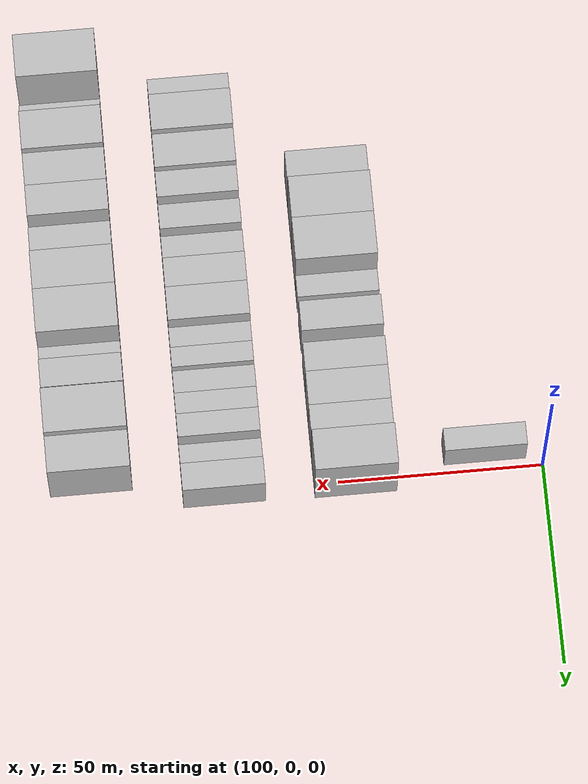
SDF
<sdf version="1.6">
 <world name="default">
  <model name="building_320">
   <static>1</static>
   <pose>114.0000 -5.0023 0 0.000000 0.000000 0.000000</pose>
   <link name="link">
    <pose>0 0 6.00 0 0 0</pose>
    <collision name="collision"><geometry><box><size>20.0000 5.6497 12.0000</size></box></geometry></collision>
    <visual name="visual">
     <cast_shadows>0</cast_shadows>
     <geometry><box><size>20.0000 5.6497 12.0000</size></box></geometry>
     <material>
      <script>
       <uri>model://HANNAS_wall/materials/scripts</uri>
       <uri>model://HANNAS_wall/materials/textures</uri>
       <name>vrc/HANNAS_wall</name>
      </script>
     </material>
    </visual>
   </link>
  </model>
  <model name="building_430">
   <static>1</static>
   <pose>146.0000 -75.6125 0 0.000000 0.000000 0.000000</pose>
   <link name="link">
    <pose>0 0 9.00 0 0 0</pose>
    <collision name="collision"><geometry><box><size>20.0000 8.7544 18.0000</size></box></geometry></collision>
    <visual name="visual">
     <cast_shadows>0</cast_shadows>
     <geometry><box><size>20.0000 8.7544 18.0000</size></box></geometry>
     <material>
      <script>
       <uri>model://HANNAS_wall/materials/scripts</uri>
       <uri>model://HANNAS_wall/materials/textures</uri>
       <name>vrc/HANNAS_wall</name>
      </script>
     </material>
    </visual>
   </link>
  </model>
  <model name="building_431">
   <static>1</static>
   <pose>146.0000 -65.9645 0 0.000000 0.000000 0.000000</pose>
   <link name="link">
    <pose>0 0 12.00 0 0 0</pose>
    <collision name="collision"><geometry><box><size>20.0000 10.5416 24.0000</size></box></geometry></collision>
    <visual name="visual">
     <cast_shadows>0</cast_shadows>
     <geometry><box><size>20.0000 10.5416 24.0000</size></box></geometry>
     <material>
      <script>
       <uri>model://HANNAS_wall/materials/scripts</uri>
       <uri>model://HANNAS_wall/materials/textures</uri>
       <name>vrc/HANNAS_wall</name>
      </script>
     </material>
    </visual>
   </link>
  </model>
  <model name="building_432">
   <static>1</static>
   <pose>146.0000 -55.2646 0 0.000000 0.000000 0.000000</pose>
   <link name="link">
    <pose>0 0 12.00 0 0 0</pose>
    <collision name="collision"><geometry><box><size>20.0000 10.8582 24.0000</size></box></geometry></collision>
    <visual name="visual">
     <cast_shadows>0</cast_shadows>
     <geometry><box><size>20.0000 10.8582 24.0000</size></box></geometry>
     <material>
      <script>
       <uri>model://HANNAS_wall/materials/scripts</uri>
       <uri>model://HANNAS_wall/materials/textures</uri>
       <name>vrc/HANNAS_wall</name>
      </script>
     </material>
    </visual>
   </link>
  </model>
  <model name="building_433">
   <static>1</static>
   <pose>146.0000 -47.0521 0 0.000000 0.000000 0.000000</pose>
   <link name="link">
    <pose>0 0 6.00 0 0 0</pose>
    <collision name="collision"><geometry><box><size>20.0000 5.5669 12.0000</size></box></geometry></collision>
    <visual name="visual">
     <cast_shadows>0</cast_shadows>
     <geometry><box><size>20.0000 5.5669 12.0000</size></box></geometry>
     <material>
      <script>
       <uri>model://HANNAS_wall/materials/scripts</uri>
       <uri>model://HANNAS_wall/materials/textures</uri>
       <name>vrc/HANNAS_wall</name>
      </script>
     </material>
    </visual>
   </link>
  </model>
  <model name="building_434">
   <static>1</static>
   <pose>146.0000 -37.4727 0 0.000000 0.000000 0.000000</pose>
   <link name="link">
    <pose>0 0 9.00 0 0 0</pose>
    <collision name="collision"><geometry><box><size>20.0000 7.5919 18.0000</size></box></geometry></collision>
    <visual name="visual">
     <cast_shadows>0</cast_shadows>
     <geometry><box><size>20.0000 7.5919 18.0000</size></box></geometry>
     <material>
      <script>
       <uri>model://HANNAS_wall/materials/scripts</uri>
       <uri>model://HANNAS_wall/materials/textures</uri>
       <name>vrc/HANNAS_wall</name>
      </script>
     </material>
    </visual>
   </link>
  </model>
  <model name="building_435">
   <static>1</static>
   <pose>146.0000 -27.0277 0 0.000000 0.000000 0.000000</pose>
   <link name="link">
    <pose>0 0 9.00 0 0 0</pose>
    <collision name="collision"><geometry><box><size>20.0000 7.2983 18.0000</size></box></geometry></collision>
    <visual name="visual">
     <cast_shadows>0</cast_shadows>
     <geometry><box><size>20.0000 7.2983 18.0000</size></box></geometry>
     <material>
      <script>
       <uri>model://HANNAS_wall/materials/scripts</uri>
       <uri>model://HANNAS_wall/materials/textures</uri>
       <name>vrc/HANNAS_wall</name>
      </script>
     </material>
    </visual>
   </link>
  </model>
  <model name="building_436">
   <static>1</static>
   <pose>146.0000 -19.1147 0 0.000000 0.000000 0.000000</pose>
   <link name="link">
    <pose>0 0 9.00 0 0 0</pose>
    <collision name="collision"><geometry><box><size>20.0000 8.5275 18.0000</size></box></geometry></collision>
    <visual name="visual">
     <cast_shadows>0</cast_shadows>
     <geometry><box><size>20.0000 8.5275 18.0000</size></box></geometry>
     <material>
      <script>
       <uri>model://HANNAS_wall/materials/scripts</uri>
       <uri>model://HANNAS_wall/materials/textures</uri>
       <name>vrc/HANNAS_wall</name>
      </script>
     </material>
    </visual>
   </link>
  </model>
  <model name="building_437">
   <static>1</static>
   <pose>146.0000 -10.8207 0 0.000000 0.000000 0.000000</pose>
   <link name="link">
    <pose>0 0 9.00 0 0 0</pose>
    <collision name="collision"><geometry><box><size>20.0000 8.0606 18.0000</size></box></geometry></collision>
    <visual name="visual">
     <cast_shadows>0</cast_shadows>
     <geometry><box><size>20.0000 8.0606 18.0000</size></box></geometry>
     <material>
      <script>
       <uri>model://HANNAS_wall/materials/scripts</uri>
       <uri>model://HANNAS_wall/materials/textures</uri>
       <name>vrc/HANNAS_wall</name>
      </script>
     </material>
    </visual>
   </link>
  </model>
  <model name="building_438">
   <static>1</static>
   <pose>146.0000 -1.7424 0 0.000000 0.000000 0.000000</pose>
   <link name="link">
    <pose>0 0 12.00 0 0 0</pose>
    <collision name="collision"><geometry><box><size>20.0000 10.0960 24.0000</size></box></geometry></collision>
    <visual name="visual">
     <cast_shadows>0</cast_shadows>
     <geometry><box><size>20.0000 10.0960 24.0000</size></box></geometry>
     <material>
      <script>
       <uri>model://HANNAS_wall/materials/scripts</uri>
       <uri>model://HANNAS_wall/materials/textures</uri>
       <name>vrc/HANNAS_wall</name>
      </script>
     </material>
    </visual>
   </link>
  </model>
  <model name="building_543">
   <static>1</static>
   <pose>178.0000 -99.6889 0 0.000000 0.000000 0.000000</pose>
   <link name="link">
    <pose>0 0 7.50 0 0 0</pose>
    <collision name="collision"><geometry><box><size>20.0000 6.1740 15.0000</size></box></geometry></collision>
    <visual name="visual">
     <cast_shadows>0</cast_shadows>
     <geometry><box><size>20.0000 6.1740 15.0000</size></box></geometry>
     <material>
      <script>
       <uri>model://HANNAS_wall/materials/scripts</uri>
       <uri>model://HANNAS_wall/materials/textures</uri>
       <name>vrc/HANNAS_wall</name>
      </script>
     </material>
    </visual>
   </link>
  </model>
  <model name="building_544">
   <static>1</static>
   <pose>178.0000 -91.9433 0 0.000000 0.000000 0.000000</pose>
   <link name="link">
    <pose>0 0 10.50 0 0 0</pose>
    <collision name="collision"><geometry><box><size>20.0000 9.3171 21.0000</size></box></geometry></collision>
    <visual name="visual">
     <cast_shadows>0</cast_shadows>
     <geometry><box><size>20.0000 9.3171 21.0000</size></box></geometry>
     <material>
      <script>
       <uri>model://HANNAS_wall/materials/scripts</uri>
       <uri>model://HANNAS_wall/materials/textures</uri>
       <name>vrc/HANNAS_wall</name>
      </script>
     </material>
    </visual>
   </link>
  </model>
  <model name="building_545">
   <static>1</static>
   <pose>178.0000 -82.9770 0 0.000000 0.000000 0.000000</pose>
   <link name="link">
    <pose>0 0 9.00 0 0 0</pose>
    <collision name="collision"><geometry><box><size>20.0000 8.6156 18.0000</size></box></geometry></collision>
    <visual name="visual">
     <cast_shadows>0</cast_shadows>
     <geometry><box><size>20.0000 8.6156 18.0000</size></box></geometry>
     <material>
      <script>
       <uri>model://HANNAS_wall/materials/scripts</uri>
       <uri>model://HANNAS_wall/materials/textures</uri>
       <name>vrc/HANNAS_wall</name>
      </script>
     </material>
    </visual>
   </link>
  </model>
  <model name="building_546">
   <static>1</static>
   <pose>178.0000 -75.3381 0 0.000000 0.000000 0.000000</pose>
   <link name="link">
    <pose>0 0 7.50 0 0 0</pose>
    <collision name="collision"><geometry><box><size>20.0000 6.6621 15.0000</size></box></geometry></collision>
    <visual name="visual">
     <cast_shadows>0</cast_shadows>
     <geometry><box><size>20.0000 6.6621 15.0000</size></box></geometry>
     <material>
      <script>
       <uri>model://HANNAS_wall/materials/scripts</uri>
       <uri>model://HANNAS_wall/materials/textures</uri>
       <name>vrc/HANNAS_wall</name>
      </script>
     </material>
    </visual>
   </link>
  </model>
  <model name="building_547">
   <static>1</static>
   <pose>178.0000 -66.8691 0 0.000000 0.000000 0.000000</pose>
   <link name="link">
    <pose>0 0 7.50 0 0 0</pose>
    <collision name="collision"><geometry><box><size>20.0000 6.2760 15.0000</size></box></geometry></collision>
    <visual name="visual">
     <cast_shadows>0</cast_shadows>
     <geometry><box><size>20.0000 6.2760 15.0000</size></box></geometry>
     <material>
      <script>
       <uri>model://HANNAS_wall/materials/scripts</uri>
       <uri>model://HANNAS_wall/materials/textures</uri>
       <name>vrc/HANNAS_wall</name>
      </script>
     </material>
    </visual>
   </link>
  </model>
  <model name="building_548">
   <static>1</static>
   <pose>178.0000 -58.4733 0 0.000000 0.000000 0.000000</pose>
   <link name="link">
    <pose>0 0 7.50 0 0 0</pose>
    <collision name="collision"><geometry><box><size>20.0000 6.5156 15.0000</size></box></geometry></collision>
    <visual name="visual">
     <cast_shadows>0</cast_shadows>
     <geometry><box><size>20.0000 6.5156 15.0000</size></box></geometry>
     <material>
      <script>
       <uri>model://HANNAS_wall/materials/scripts</uri>
       <uri>model://HANNAS_wall/materials/textures</uri>
       <name>vrc/HANNAS_wall</name>
      </script>
     </material>
    </visual>
   </link>
  </model>
  <model name="building_549">
   <static>1</static>
   <pose>178.0000 -51.4909 0 0.000000 0.000000 0.000000</pose>
   <link name="link">
    <pose>0 0 9.00 0 0 0</pose>
    <collision name="collision"><geometry><box><size>20.0000 7.4491 18.0000</size></box></geometry></collision>
    <visual name="visual">
     <cast_shadows>0</cast_shadows>
     <geometry><box><size>20.0000 7.4491 18.0000</size></box></geometry>
     <material>
      <script>
       <uri>model://HANNAS_wall/materials/scripts</uri>
       <uri>model://HANNAS_wall/materials/textures</uri>
       <name>vrc/HANNAS_wall</name>
      </script>
     </material>
    </visual>
   </link>
  </model>
  <model name="building_550">
   <static>1</static>
   <pose>178.0000 -43.5129 0 0.000000 0.000000 0.000000</pose>
   <link name="link">
    <pose>0 0 9.00 0 0 0</pose>
    <collision name="collision"><geometry><box><size>20.0000 8.5069 18.0000</size></box></geometry></collision>
    <visual name="visual">
     <cast_shadows>0</cast_shadows>
     <geometry><box><size>20.0000 8.5069 18.0000</size></box></geometry>
     <material>
      <script>
       <uri>model://HANNAS_wall/materials/scripts</uri>
       <uri>model://HANNAS_wall/materials/textures</uri>
       <name>vrc/HANNAS_wall</name>
      </script>
     </material>
    </visual>
   </link>
  </model>
  <model name="building_551">
   <static>1</static>
   <pose>178.0000 -36.7416 0 0.000000 0.000000 0.000000</pose>
   <link name="link">
    <pose>0 0 6.00 0 0 0</pose>
    <collision name="collision"><geometry><box><size>20.0000 5.0357 12.0000</size></box></geometry></collision>
    <visual name="visual">
     <cast_shadows>0</cast_shadows>
     <geometry><box><size>20.0000 5.0357 12.0000</size></box></geometry>
     <material>
      <script>
       <uri>model://HANNAS_wall/materials/scripts</uri>
       <uri>model://HANNAS_wall/materials/textures</uri>
       <name>vrc/HANNAS_wall</name>
      </script>
     </material>
    </visual>
   </link>
  </model>
  <model name="building_552">
   <static>1</static>
   <pose>178.0000 -31.6826 0 0.000000 0.000000 0.000000</pose>
   <link name="link">
    <pose>0 0 6.00 0 0 0</pose>
    <collision name="collision"><geometry><box><size>20.0000 5.0823 12.0000</size></box></geometry></collision>
    <visual name="visual">
     <cast_shadows>0</cast_shadows>
     <geometry><box><size>20.0000 5.0823 12.0000</size></box></geometry>
     <material>
      <script>
       <uri>model://HANNAS_wall/materials/scripts</uri>
       <uri>model://HANNAS_wall/materials/textures</uri>
       <name>vrc/HANNAS_wall</name>
      </script>
     </material>
    </visual>
   </link>
  </model>
  <model name="building_553">
   <static>1</static>
   <pose>178.0000 -25.3454 0 0.000000 0.000000 0.000000</pose>
   <link name="link">
    <pose>0 0 6.00 0 0 0</pose>
    <collision name="collision"><geometry><box><size>20.0000 5.5922 12.0000</size></box></geometry></collision>
    <visual name="visual">
     <cast_shadows>0</cast_shadows>
     <geometry><box><size>20.0000 5.5922 12.0000</size></box></geometry>
     <material>
      <script>
       <uri>model://HANNAS_wall/materials/scripts</uri>
       <uri>model://HANNAS_wall/materials/textures</uri>
       <name>vrc/HANNAS_wall</name>
      </script>
     </material>
    </visual>
   </link>
  </model>
  <model name="building_554">
   <static>1</static>
   <pose>178.0000 -19.9188 0 0.000000 0.000000 0.000000</pose>
   <link name="link">
    <pose>0 0 6.00 0 0 0</pose>
    <collision name="collision"><geometry><box><size>20.0000 5.2610 12.0000</size></box></geometry></collision>
    <visual name="visual">
     <cast_shadows>0</cast_shadows>
     <geometry><box><size>20.0000 5.2610 12.0000</size></box></geometry>
     <material>
      <script>
       <uri>model://HANNAS_wall/materials/scripts</uri>
       <uri>model://HANNAS_wall/materials/textures</uri>
       <name>vrc/HANNAS_wall</name>
      </script>
     </material>
    </visual>
   </link>
  </model>
  <model name="building_555">
   <static>1</static>
   <pose>178.0000 -14.3501 0 0.000000 0.000000 0.000000</pose>
   <link name="link">
    <pose>0 0 6.00 0 0 0</pose>
    <collision name="collision"><geometry><box><size>20.0000 5.8763 12.0000</size></box></geometry></collision>
    <visual name="visual">
     <cast_shadows>0</cast_shadows>
     <geometry><box><size>20.0000 5.8763 12.0000</size></box></geometry>
     <material>
      <script>
       <uri>model://HANNAS_wall/materials/scripts</uri>
       <uri>model://HANNAS_wall/materials/textures</uri>
       <name>vrc/HANNAS_wall</name>
      </script>
     </material>
    </visual>
   </link>
  </model>
  <model name="building_556">
   <static>1</static>
   <pose>178.0000 -6.6283 0 0.000000 0.000000 0.000000</pose>
   <link name="link">
    <pose>0 0 6.00 0 0 0</pose>
    <collision name="collision"><geometry><box><size>20.0000 5.5673 12.0000</size></box></geometry></collision>
    <visual name="visual">
     <cast_shadows>0</cast_shadows>
     <geometry><box><size>20.0000 5.5673 12.0000</size></box></geometry>
     <material>
      <script>
       <uri>model://HANNAS_wall/materials/scripts</uri>
       <uri>model://HANNAS_wall/materials/textures</uri>
       <name>vrc/HANNAS_wall</name>
      </script>
     </material>
    </visual>
   </link>
  </model>
  <model name="building_557">
   <static>1</static>
   <pose>178.0000 -0.4269 0 0.000000 0.000000 0.000000</pose>
   <link name="link">
    <pose>0 0 7.50 0 0 0</pose>
    <collision name="collision"><geometry><box><size>20.0000 6.8354 15.0000</size></box></geometry></collision>
    <visual name="visual">
     <cast_shadows>0</cast_shadows>
     <geometry><box><size>20.0000 6.8354 15.0000</size></box></geometry>
     <material>
      <script>
       <uri>model://HANNAS_wall/materials/scripts</uri>
       <uri>model://HANNAS_wall/materials/textures</uri>
       <name>vrc/HANNAS_wall</name>
      </script>
     </material>
    </visual>
   </link>
  </model>
  <model name="building_672">
   <static>1</static>
   <pose>210.0000 -108.4608 0 0.000000 0.000000 0.000000</pose>
   <link name="link">
    <pose>0 0 12.00 0 0 0</pose>
    <collision name="collision"><geometry><box><size>20.0000 11.0819 24.0000</size></box></geometry></collision>
    <visual name="visual">
     <cast_shadows>0</cast_shadows>
     <geometry><box><size>20.0000 11.0819 24.0000</size></box></geometry>
     <material>
      <script>
       <uri>model://HANNAS_wall/materials/scripts</uri>
       <uri>model://HANNAS_wall/materials/textures</uri>
       <name>vrc/HANNAS_wall</name>
      </script>
     </material>
    </visual>
   </link>
  </model>
  <model name="building_673">
   <static>1</static>
   <pose>210.0000 -97.5015 0 0.000000 0.000000 0.000000</pose>
   <link name="link">
    <pose>0 0 6.00 0 0 0</pose>
    <collision name="collision"><geometry><box><size>20.0000 4.8367 12.0000</size></box></geometry></collision>
    <visual name="visual">
     <cast_shadows>0</cast_shadows>
     <geometry><box><size>20.0000 4.8367 12.0000</size></box></geometry>
     <material>
      <script>
       <uri>model://HANNAS_wall/materials/scripts</uri>
       <uri>model://HANNAS_wall/materials/textures</uri>
       <name>vrc/HANNAS_wall</name>
      </script>
     </material>
    </visual>
   </link>
  </model>
  <model name="building_674">
   <static>1</static>
   <pose>210.0000 -90.1386 0 0.000000 0.000000 0.000000</pose>
   <link name="link">
    <pose>0 0 10.50 0 0 0</pose>
    <collision name="collision"><geometry><box><size>20.0000 9.8892 21.0000</size></box></geometry></collision>
    <visual name="visual">
     <cast_shadows>0</cast_shadows>
     <geometry><box><size>20.0000 9.8892 21.0000</size></box></geometry>
     <material>
      <script>
       <uri>model://HANNAS_wall/materials/scripts</uri>
       <uri>model://HANNAS_wall/materials/textures</uri>
       <name>vrc/HANNAS_wall</name>
      </script>
     </material>
    </visual>
   </link>
  </model>
  <model name="building_675">
   <static>1</static>
   <pose>210.0000 -81.0297 0 0.000000 0.000000 0.000000</pose>
   <link name="link">
    <pose>0 0 9.00 0 0 0</pose>
    <collision name="collision"><geometry><box><size>20.0000 8.3285 18.0000</size></box></geometry></collision>
    <visual name="visual">
     <cast_shadows>0</cast_shadows>
     <geometry><box><size>20.0000 8.3285 18.0000</size></box></geometry>
     <material>
      <script>
       <uri>model://HANNAS_wall/materials/scripts</uri>
       <uri>model://HANNAS_wall/materials/textures</uri>
       <name>vrc/HANNAS_wall</name>
      </script>
     </material>
    </visual>
   </link>
  </model>
  <model name="building_676">
   <static>1</static>
   <pose>210.0000 -72.9116 0 0.000000 0.000000 0.000000</pose>
   <link name="link">
    <pose>0 0 9.00 0 0 0</pose>
    <collision name="collision"><geometry><box><size>20.0000 7.9078 18.0000</size></box></geometry></collision>
    <visual name="visual">
     <cast_shadows>0</cast_shadows>
     <geometry><box><size>20.0000 7.9078 18.0000</size></box></geometry>
     <material>
      <script>
       <uri>model://HANNAS_wall/materials/scripts</uri>
       <uri>model://HANNAS_wall/materials/textures</uri>
       <name>vrc/HANNAS_wall</name>
      </script>
     </material>
    </visual>
   </link>
  </model>
  <model name="building_677">
   <static>1</static>
   <pose>210.0000 -61.9305 0 0.000000 0.000000 0.000000</pose>
   <link name="link">
    <pose>0 0 9.00 0 0 0</pose>
    <collision name="collision"><geometry><box><size>20.0000 8.0542 18.0000</size></box></geometry></collision>
    <visual name="visual">
     <cast_shadows>0</cast_shadows>
     <geometry><box><size>20.0000 8.0542 18.0000</size></box></geometry>
     <material>
      <script>
       <uri>model://HANNAS_wall/materials/scripts</uri>
       <uri>model://HANNAS_wall/materials/textures</uri>
       <name>vrc/HANNAS_wall</name>
      </script>
     </material>
    </visual>
   </link>
  </model>
  <model name="building_678">
   <static>1</static>
   <pose>210.0000 -53.0159 0 0.000000 0.000000 0.000000</pose>
   <link name="link">
    <pose>0 0 12.00 0 0 0</pose>
    <collision name="collision"><geometry><box><size>20.0000 9.7750 24.0000</size></box></geometry></collision>
    <visual name="visual">
     <cast_shadows>0</cast_shadows>
     <geometry><box><size>20.0000 9.7750 24.0000</size></box></geometry>
     <material>
      <script>
       <uri>model://HANNAS_wall/materials/scripts</uri>
       <uri>model://HANNAS_wall/materials/textures</uri>
       <name>vrc/HANNAS_wall</name>
      </script>
     </material>
    </visual>
   </link>
  </model>
  <model name="building_679">
   <static>1</static>
   <pose>210.0000 -42.5788 0 0.000000 0.000000 0.000000</pose>
   <link name="link">
    <pose>0 0 12.00 0 0 0</pose>
    <collision name="collision"><geometry><box><size>20.0000 11.0993 24.0000</size></box></geometry></collision>
    <visual name="visual">
     <cast_shadows>0</cast_shadows>
     <geometry><box><size>20.0000 11.0993 24.0000</size></box></geometry>
     <material>
      <script>
       <uri>model://HANNAS_wall/materials/scripts</uri>
       <uri>model://HANNAS_wall/materials/textures</uri>
       <name>vrc/HANNAS_wall</name>
      </script>
     </material>
    </visual>
   </link>
  </model>
  <model name="building_680">
   <static>1</static>
   <pose>210.0000 -34.6005 0 0.000000 0.000000 0.000000</pose>
   <link name="link">
    <pose>0 0 6.00 0 0 0</pose>
    <collision name="collision"><geometry><box><size>20.0000 4.8574 12.0000</size></box></geometry></collision>
    <visual name="visual">
     <cast_shadows>0</cast_shadows>
     <geometry><box><size>20.0000 4.8574 12.0000</size></box></geometry>
     <material>
      <script>
       <uri>model://HANNAS_wall/materials/scripts</uri>
       <uri>model://HANNAS_wall/materials/textures</uri>
       <name>vrc/HANNAS_wall</name>
      </script>
     </material>
    </visual>
   </link>
  </model>
  <model name="building_681">
   <static>1</static>
   <pose>210.0000 -28.5682 0 0.000000 0.000000 0.000000</pose>
   <link name="link">
    <pose>0 0 9.00 0 0 0</pose>
    <collision name="collision"><geometry><box><size>20.0000 7.2072 18.0000</size></box></geometry></collision>
    <visual name="visual">
     <cast_shadows>0</cast_shadows>
     <geometry><box><size>20.0000 7.2072 18.0000</size></box></geometry>
     <material>
      <script>
       <uri>model://HANNAS_wall/materials/scripts</uri>
       <uri>model://HANNAS_wall/materials/textures</uri>
       <name>vrc/HANNAS_wall</name>
      </script>
     </material>
    </visual>
   </link>
  </model>
  <model name="building_682">
   <static>1</static>
   <pose>210.0000 -17.3407 0 0.000000 0.000000 0.000000</pose>
   <link name="link">
    <pose>0 0 12.00 0 0 0</pose>
    <collision name="collision"><geometry><box><size>20.0000 11.2479 24.0000</size></box></geometry></collision>
    <visual name="visual">
     <cast_shadows>0</cast_shadows>
     <geometry><box><size>20.0000 11.2479 24.0000</size></box></geometry>
     <material>
      <script>
       <uri>model://HANNAS_wall/materials/scripts</uri>
       <uri>model://HANNAS_wall/materials/textures</uri>
       <name>vrc/HANNAS_wall</name>
      </script>
     </material>
    </visual>
   </link>
  </model>
  <model name="building_683">
   <static>1</static>
   <pose>210.0000 -7.1401 0 0.000000 0.000000 0.000000</pose>
   <link name="link">
    <pose>0 0 10.50 0 0 0</pose>
    <collision name="collision"><geometry><box><size>20.0000 9.1533 21.0000</size></box></geometry></collision>
    <visual name="visual">
     <cast_shadows>0</cast_shadows>
     <geometry><box><size>20.0000 9.1533 21.0000</size></box></geometry>
     <material>
      <script>
       <uri>model://HANNAS_wall/materials/scripts</uri>
       <uri>model://HANNAS_wall/materials/textures</uri>
       <name>vrc/HANNAS_wall</name>
      </script>
     </material>
    </visual>
   </link>
  </model>
 </world>
</sdf>
